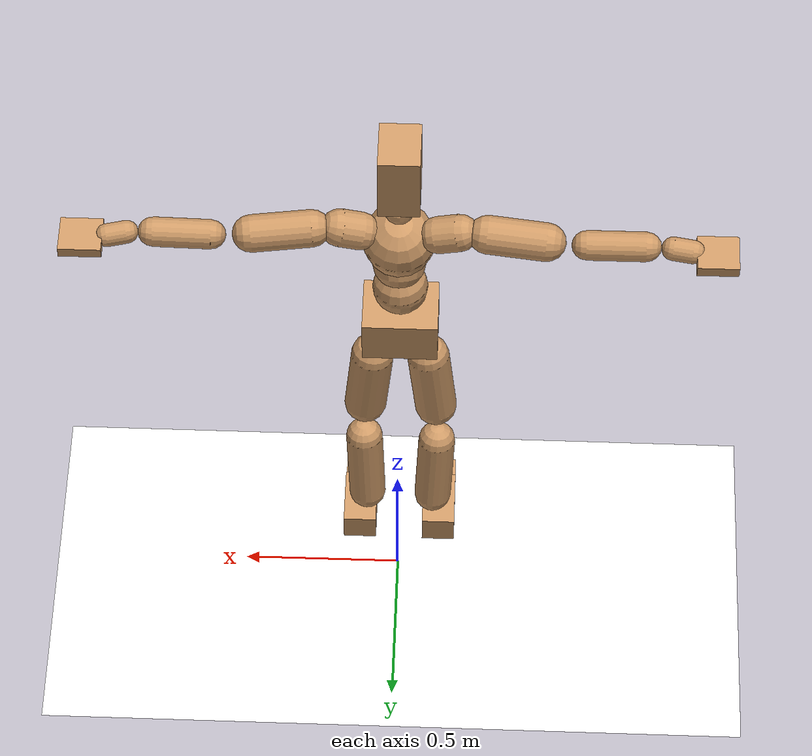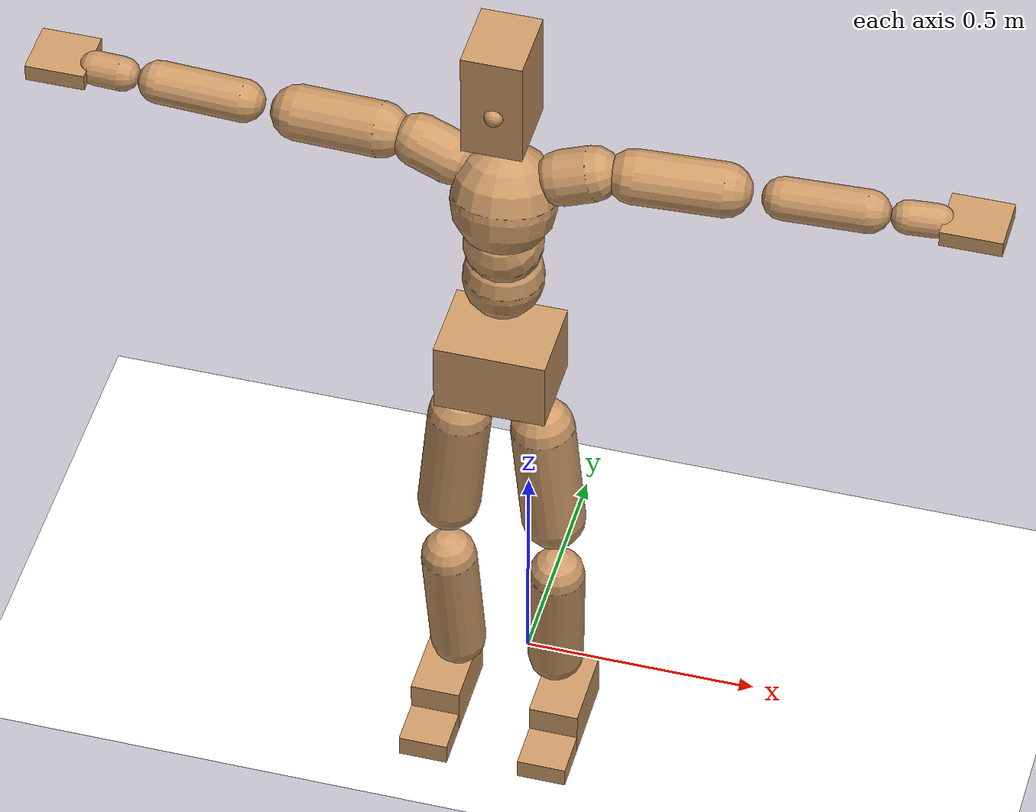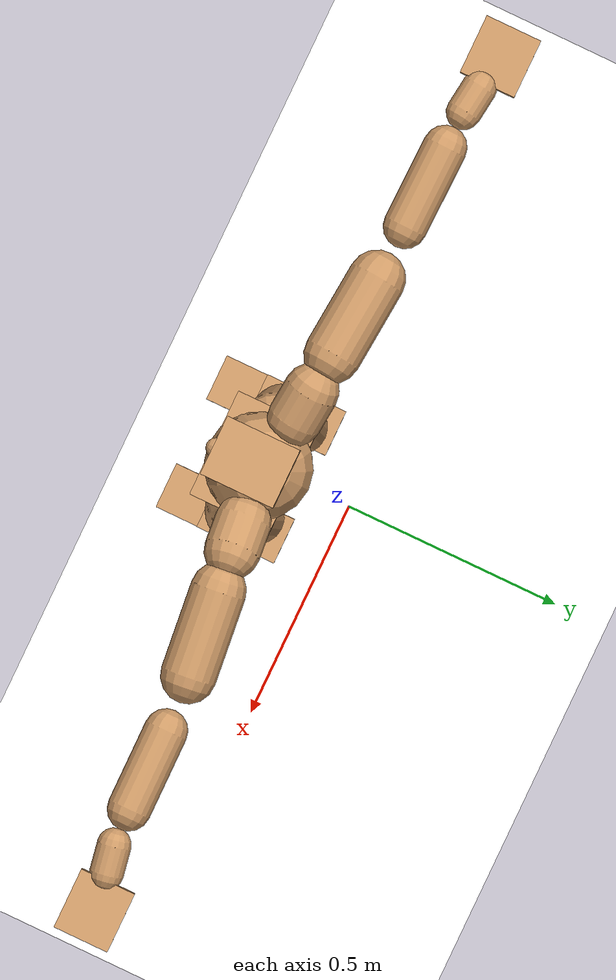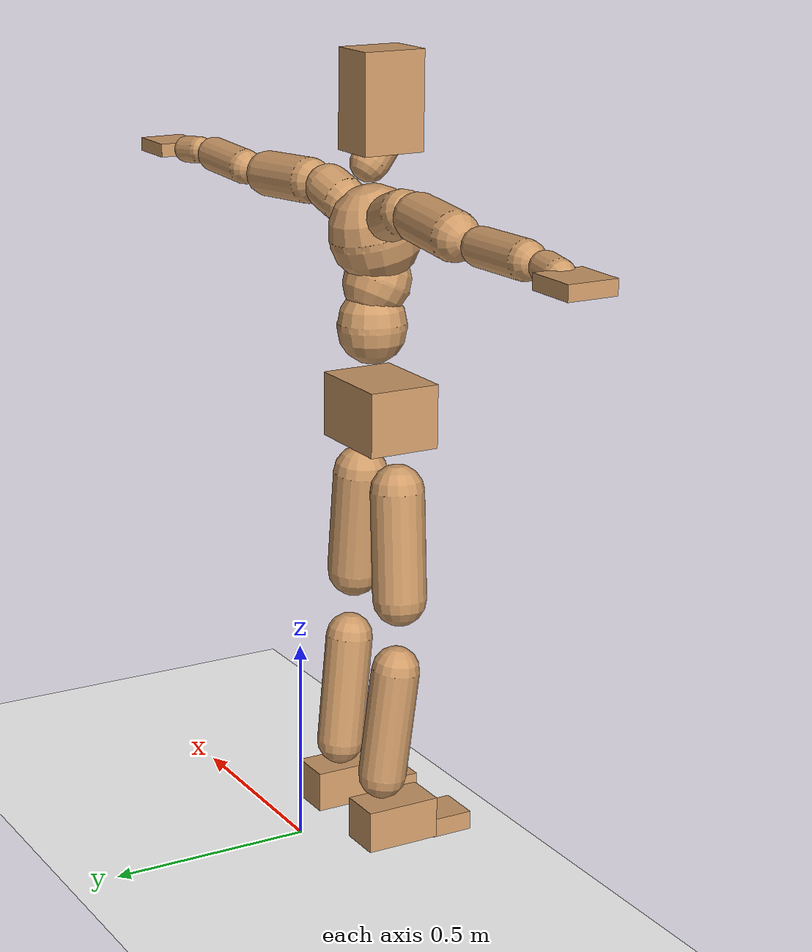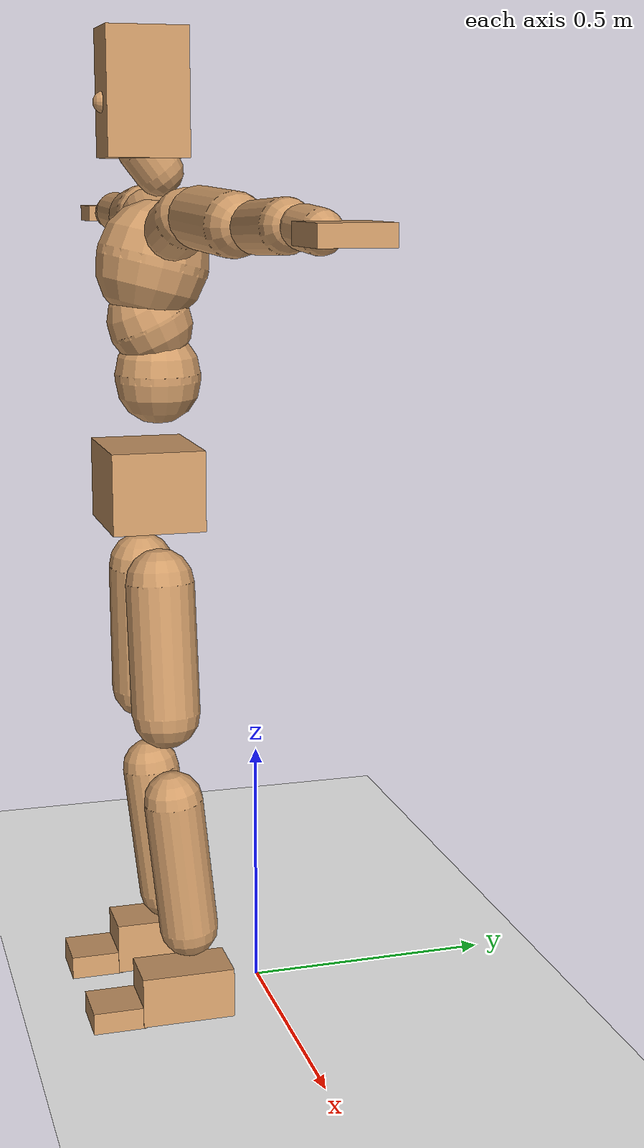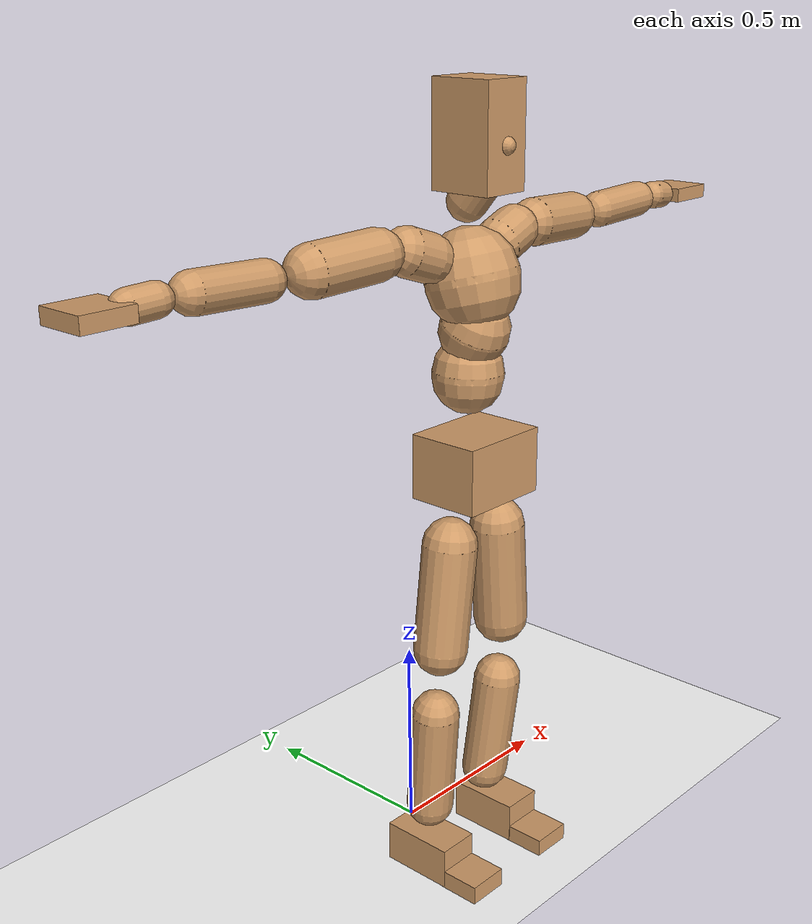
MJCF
<mujoco model="humanoid">
  <option integrator="implicitfast" />

  <visual>
    <global offwidth="1280" offheight="960" />
    <headlight active="1" ambient="0.34 0.34 0.34" diffuse="0.5 0.5 0.5" />
  </visual>

  <default>
    <joint damping="2" stiffness="2" armature="0.01" limited="true" solimplimit="0 .99 .01" />
    <geom condim="1" friction="0.7 0.005 0.0001" solimp=".99 .99 .003" solref="0.015 1" margin="0.001" rgba="0.8 0.6 .4 1" />
    <default class="smplcontact">
      <geom condim="3" friction="1. 0.005 0.0001" solref="0.015 1" solimp="0.98 0.98 0.001" priority="1" />
    </default>
    <default class="stiff_medium">
      <joint stiffness="10" />
    </default>
    <default class="stiff_medium_higher">
      <joint stiffness="50" />
    </default>
    <default class="stiff_high">
      <joint stiffness="100" />
    </default>
  </default>

  <asset>
    <texture type="skybox" builtin="gradient" rgb1="0.99 0.99 0.99" rgb2="0.608 0.828 0.892" width="100" />
    <texture builtin="flat" height="1278" mark="cross" markrgb="1 1 1" name="texgeom" random="0.01" rgb1="0.8 0.6 0.4" rgb2="0.8 0.6 0.4" type="cube" width="127" />
    <texture name="texplane" type="2d" builtin="checker" markrgb="1 1 1" rgb1="0.756 0.772 0.76" rgb2="0.6 0.6 0.6" width="100" height="100" />
    <material name="MatPlane" reflectance="0.5" texture="texplane" texrepeat="1 1" texuniform="true" />
    <material name="geom" texture="texgeom" texuniform="true" />
  </asset>

  <worldbody>
    <light name="tracking_light" pos="0 0 7" dir="0 0 -1" directional="true" cutoff="100" exponent="1" diffuse="1 1 1" specular="0.1 0.1 0.1" mode="trackcom" />
    <camera name="back" pos="0 3 2.4" xyaxes="-1 0 0 0 -1 2" mode="trackcom" />
    <camera name="side" pos="-3 0 2.4" xyaxes="0 -1 0 1 0 2" mode="trackcom" />
    <camera name="front_side" pos="-2.8 -2.8 0.8" xyaxes="0.5 -0.5 0 0.1 0.1 1" mode="trackcom" />
    <geom condim="3" name="floor" pos="0 0 0" rgba="1 1 1 1" size="100 100 .2" type="plane" material="MatPlane" />
    <body name="Pelvis" pos="-0.0018 -0.2233 1.08166" euler="90 0 0">
      <site name="Pelvis" size="0.01" />
      <freejoint name="Pelvis" />
      <geom type="box" pos="-0.0000 -0.0121 -0.0055" size="0.116927 0.0789724 0.0907854" quat="1.0000 0.0000 0.0000 0.0000" density="3165.830099" name="Pelvis" />
      <body name="L_Hip" pos="0.0803559 -0.105677 -0.00786216">
        <joint name="L_Hip_x" type="hinge" pos="0 0 0" axis="1 0 0" stiffness="15.7078747" range="-160.0 22.92" class="stiff_medium" damping="25.23772389480967" armature="0.01802189367662682"/>
        <joint name="L_Hip_y" type="hinge" pos="0 0 0" axis="0 1 0" stiffness="15.6855205" range="-70.0 70.0" class="stiff_medium" damping="16.300732094553652" armature="0.01694007328723401"/>
        <joint name="L_Hip_z" type="hinge" pos="0 0 0" axis="0 0 1" stiffness="15.690001799999997" range="-28.65 90.0" class="stiff_medium" damping="16.81631836797602" armature="0.018023488273476662"/>
        <geom type="capsule" density="2040.816327" fromto="0.00797778 -0.086715 -0.00104058 0.0316799 -0.347091 -0.00416232" size="0.0672687" name="L_Hip" />
        <body name="L_Knee" pos="0.0396577 -0.433806 -0.0052029">
          <joint name="L_Knee_x" type="hinge" pos="0 0 0" axis="1 0 0" range="-5.16 171.89" damping="13.346303052286608" armature="0.017826965084499265" stiffness="3.12244338"/>
          <joint name="L_Knee_y" type="hinge" pos="0 0 0" axis="0 1 0" range="-4.58 6.88" damping="12.963887814800705" armature="0.016757052996537826" stiffness="3.13417258"/>
          <joint name="L_Knee_z" type="hinge" pos="0 0 0" axis="0 0 1" range="-6.88 4.58" damping="13.333353450634641" armature="0.017834602645236845" stiffness="3.1150524799999997"/>
          <geom type="capsule" density="1234.567901" fromto="-0.00312174 -0.0920335 -0.0100589 -0.0126026 -0.368134 -0.040467" size="0.0591746" name="L_Knee" />
          <body name="L_Ankle" pos="-0.0157243 -0.460168 -0.0505259">
            <joint name="L_Ankle_x" type="hinge" pos="0 0 0" axis="1 0 0" range="-45.84 45.84" class="stiff_medium" damping="9.584383077339064" armature="0.016864742477228516" stiffness="15.1302503"/>
            <joint name="L_Ankle_y" type="hinge" pos="0 0 0" axis="0 1 0" range="-74.48 22.92" class="stiff_medium" damping="4.785799891077518" armature="0.016819783672982293" stiffness="15.1302518"/>
            <joint name="L_Ankle_z" type="hinge" pos="0 0 0" axis="0 0 1" range="-4.58 4.58" class="stiff_medium" damping="9.487489559185768" armature="0.016525469635267406" stiffness="15.130257199999999"/>
            <geom type="box" pos="0.0269395 -0.0276332 0.02798" size="0.0528305 0.0507523 0.092973" quat="1.0000 0.0000 0.0000 0.0000" density="449.071558" name="L_Ankle" class="smplcontact" />
            <body name="L_Toe" pos="0.0305237 -0.064516 0.137935">
              <joint name="L_Toe_x" type="hinge" pos="0 0 0" axis="1 0 0" range="-91.67 22.92" armature="0.016354829921636442" damping="3.1461274088534013" stiffness="3.02605338"/>
              <joint name="L_Toe_y" type="hinge" pos="0 0 0" axis="0 1 0" range="-4.58 4.58" armature="0.016148466932082776" damping="3.126215635679384" stiffness="3.0260532600000003"/>
              <joint name="L_Toe_z" type="hinge" pos="0 0 0" axis="0 0 1" range="-4.58 4.58" armature="0.01573122144709122" damping="3.0855639868541425" stiffness="3.0260539999999994"/>
              <geom type="box" pos="-0.0034686 0.0063591 0.0286738" size="0.0522836 0.021876 0.0542525" quat="1.0000 0.0000 0.0000 0.0000" density="423.206892" name="L_Toe" class="smplcontact" />
            </body>
          </body>
        </body>
      </body>
      <body name="R_Hip" pos="-0.0782747 -0.104636 -0.00497166">
        <joint name="R_Hip_x" type="hinge" pos="0 0 0" axis="1 0 0" stiffness="15.7078747" range="-160.0 22.92" class="stiff_medium" damping="25.23772389480967" armature="0.01802189367662682"/>
        <joint name="R_Hip_y" type="hinge" pos="0 0 0" axis="0 1 0" stiffness="15.6855205" range="-70.0 70.0" class="stiff_medium" damping="16.300732094553652" armature="0.01694007328723401"/>
        <joint name="R_Hip_z" type="hinge" pos="0 0 0" axis="0 0 1" stiffness="15.690001799999997" range="-90.0 28.65" class="stiff_medium" damping="16.81631836797602" armature="0.018023488273476662"/>
        <geom type="capsule" density="2040.816327" fromto="-0.00890274 -0.0884493 -0.00208116 -0.0353797 -0.353913 -0.00820902" size="0.0662843" name="R_Hip" />
        <body name="R_Knee" pos="-0.0442825 -0.442362 -0.0102902">
          <joint name="R_Knee_x" type="hinge" pos="0 0 0" axis="1 0 0" range="-5.16 171.89" damping="13.346303052286608" armature="0.017826965084499265" stiffness="3.12244338"/>
          <joint name="R_Knee_y" type="hinge" pos="0 0 0" axis="0 1 0" range="-6.88 4.58" damping="12.963887814800705" armature="0.016757052996537826" stiffness="3.13417258"/>
          <joint name="R_Knee_z" type="hinge" pos="0 0 0" axis="0 0 1" range="-4.58 6.88" damping="13.333353450634641" armature="0.017834602645236845" stiffness="3.1150524799999997"/>
          <geom type="capsule" density="1234.567901" fromto="0.00369984 -0.0921491 -0.0098277 0.0145681 -0.368481 -0.0390796" size="0.0591746" name="R_Knee" />
          <body name="R_Ankle" pos="0.018268 -0.46063 -0.0489073">
            <joint name="R_Ankle_x" type="hinge" pos="0 0 0" axis="1 0 0" range="-45.84 45.84" class="stiff_medium" damping="9.584383077339064" armature="0.016864742477228516" stiffness="15.1302503"/>
            <joint name="R_Ankle_y" type="hinge" pos="0 0 0" axis="0 1 0" range="-22.92 74.48" class="stiff_medium" damping="4.785799891077518" armature="0.016819783672982293" stiffness="15.1302518"/>
            <joint name="R_Ankle_z" type="hinge" pos="0 0 0" axis="0 0 1" range="-4.58 4.58" class="stiff_medium" damping="9.487489559185768" armature="0.016525469635267406" stiffness="15.130257199999999"/>
            <geom type="box" pos="-0.0245114 -0.0201179 0.0295987" size="0.0528305 0.0522836 0.0946137" quat="1.0000 0.0000 0.0000 0.0000" density="434.700981" name="R_Ankle" class="smplcontact" />
            <body name="R_Toe" pos="-0.0293675 -0.0556132 0.142559">
              <joint name="R_Toe_x" type="hinge" pos="0 0 0" axis="1 0 0" range="-91.67 22.92" armature="0.016354829921636442" damping="3.1461274088534013" stiffness="3.02605338"/>
              <joint name="R_Toe_y" type="hinge" pos="0 0 0" axis="0 1 0" range="-4.58 4.58" armature="0.016148466932082776" damping="3.126215635679384" stiffness="3.0260532600000003"/>
              <joint name="R_Toe_z" type="hinge" pos="0 0 0" axis="0 0 1" range="-4.58 4.58" armature="0.01573122144709122" damping="3.0855639868541425" stiffness="3.0260539999999994"/>
              <geom type="box" pos="0.00485604 0.0052029 0.0262457" size="0.052393 0.0236261 0.0539243" quat="1.0000 0.0000 0.0000 0.0000" density="407.384095" name="R_Toe" class="smplcontact" />
            </body>
          </body>
        </body>
      </body>
      <body name="Torso" pos="-0.0028125 0.122625 -0.0300375">
        <joint name="Torso_x" type="hinge" pos="0 0 0" axis="1 0 0" range="-25.78 57.3" class="stiff_medium" damping="22.292495138595267" armature="0.015506230375247636" stiffness="14.24389"/>
        <joint name="Torso_y" type="hinge" pos="0 0 0" axis="0 1 0" range="-57.3 57.3" class="stiff_high" damping="31.739361377039707" armature="0.01791601005719481" stiffness="140.570788"/>
        <joint name="Torso_z" type="hinge" pos="0 0 0" axis="0 0 1" range="-34.38 34.38" class="stiff_high" damping="30.50097700648449" armature="0.01633761830676413" stiffness="142.3569795918367"/>
        <geom type="capsule" density="2040.816327" fromto="0.0028125 0.0684 0.0005625 0.003375 0.0835875 0.000675" size="0.0841132" name="Torso" />
        <body name="Spine" pos="0.0061875 0.1521 0.0012375">
          <joint name="Spine_x" type="hinge" pos="0 0 0" axis="1 0 0" stiffness="14.078564800000002" range="-25.78 57.3" class="stiff_medium" damping="21.72760971920413" armature="0.014903319125889361"/>
          <joint name="Spine_y" type="hinge" pos="0 0 0" axis="0 1 0" stiffness="14.049216999999999" range="-57.3 57.3" class="stiff_high" damping="12.69771635555847" armature="0.01793160437408819"/>
          <joint name="Spine_z" type="hinge" pos="0 0 0" axis="0 0 1" stiffness="27.982225600000007" range="-34.38 34.38" class="stiff_high" damping="18.276401369401317" armature="0.016579316564810813"/>
          <geom type="capsule" density="2040.816327" fromto="0.0007875 0.026775 0.012825 0.0009 0.0327375 0.01575" size="0.0825819" name="Spine" />
          <body name="Chest" pos="0.0016875 0.0595125 0.028575">
            <joint name="Chest_x" type="hinge" pos="0 0 0" axis="1 0 0" stiffness="13.841513469387756" range="-25.78 57.3" class="stiff_medium" damping="21.31442512388642" armature="0.014587509422819903"/>
            <joint name="Chest_y" type="hinge" pos="0 0 0" axis="0 1 0" stiffness="14.707685319148933" range="-57.3 57.3" class="stiff_high" damping="12.998476051320766" armature="0.017949839657635757"/>
            <joint name="Chest_z" type="hinge" pos="0 0 0" axis="0 0 1" stiffness="27.632332" range="-34.38 34.38" class="stiff_high" damping="18.249983369279786" armature="0.016740750019608105"/>
            <geom type="capsule" density="2040.816327" fromto="-0.0010125 0.076725 -0.0194625 -0.001125 0.0937125 -0.02385" size="0.109599" name="Chest" />
            <body name="Neck" pos="-0.00315 0.240638 -0.0482625">
              <joint name="Neck_x" type="hinge" pos="0 0 0" axis="1 0 0" range="-28.65 57.3" class="stiff_medium_higher" damping="11.652865887297615" armature="0.011733086047008907" stiffness="57.865971"/>
              <joint name="Neck_y" type="hinge" pos="0 0 0" axis="0 1 0" range="-40.11 40.11" class="stiff_medium_higher" damping="11.712065283056939" armature="0.011905293341033716" stiffness="57.609867"/>
              <joint name="Neck_z" type="hinge" pos="0 0 0" axis="0 0 1" range="-40.11 40.11" class="stiff_medium_higher" damping="11.574391386476137" armature="0.011716035824774802" stiffness="57.17229700000001"/>
              <geom type="capsule" density="1000" fromto="0.001125 0.014625 0.0115875 0.0046125 0.0585 0.0462375" size="0.0476897" name="Neck" />
              <body name="Head" pos="0.00536224 0.067028 0.0529006">
                <joint name="Head_x" type="hinge" pos="0 0 0" axis="1 0 0" range="-28.65 57.3" class="stiff_medium_higher" damping="2.2965213543809053" armature="0.011660345413880405" stiffness="56.537887"/>
                <joint name="Head_y" type="hinge" pos="0 0 0" axis="0 1 0" range="-40.11 40.11" class="stiff_medium_higher" damping="2.296523793232211" armature="0.01166037368599503" stiffness="56.53787"/>
                <joint name="Head_z" type="hinge" pos="0 0 0" axis="0 0 1" range="-40.11 40.11" class="stiff_medium_higher" damping="2.296521372569542" armature="0.011660343123708694" stiffness="56.53789899999999"/>
                <geom type="box" pos="-0.00433104 0.0903331 -0.0119619" size="0.0624907 0.119 0.0783712" quat="1.0000 0.0000 0.0000 0.0000" density="1018.069894" name="Head" />
                <geom type="capsule" name="nose" size="0.020624 0.010312" pos="0 0.072184 0.05156" quat="1 0 0 0" mass="0" contype="0" conaffinity="0" />
              </body>
            </body>
            <body name="L_Thorax" pos="0.0911086 0.14071 -0.0394264">
              <joint name="L_Thorax_x" type="hinge" pos="0 0 0" axis="1 0 0" range="-10.89 4.58" class="stiff_medium_higher" damping="32.85045987595898" armature="0.017230502966720487" stiffness="78.287958"/>
              <joint name="L_Thorax_y" type="hinge" pos="0 0 0" axis="0 1 0" range="-28.65 17.19" class="stiff_medium_higher" damping="33.632749955327995" armature="0.018036809597791793" stiffness="78.39259650000001"/>
              <joint name="L_Thorax_z" type="hinge" pos="0 0 0" axis="0 0 1" range="-31.51 40.11" class="stiff_medium_higher" damping="33.63300575833298" armature="0.018037539319358906" stiffness="78.39061749999998"/>
              <geom type="capsule" density="1000" fromto="0.0210428 0.00705282 -0.00208116 0.0841714 0.0282113 -0.00820902" size="0.056987" name="L_Thorax" />
              <body name="L_Shoulder" pos="0.105214 0.0352641 -0.0102902">
                <joint name="L_Shoulder_x" type="hinge" pos="0 0 0" axis="1 0 0" range="-97.4 97.4" class="stiff_medium" damping="9.759575156828415" armature="0.01690941924570479" stiffness="15.646983800000001"/>
                <joint name="L_Shoulder_y" type="hinge" pos="0 0 0" axis="0 1 0" range="-108.86 80.21" class="stiff_medium" damping="10.078063129916092" armature="0.018006180815773827" stiffness="15.6685945"/>
                <joint name="L_Shoulder_z" type="hinge" pos="0 0 0" axis="0 0 1" range="-97.4 85.94" class="stiff_medium" damping="10.078529537158841" armature="0.018007107370736332" stiffness="15.669238500000002"/>
                <geom type="capsule" density="1000" fromto="0.0600068 -0.00300612 -0.0063591 0.240143 -0.0117932 -0.0254364" size="0.0565495" name="L_Shoulder" />
                <body name="L_Elbow" pos="0.30015 -0.0147994 -0.0317955">
                  <joint name="L_Elbow_x" type="hinge" pos="0 0 0" axis="1 0 0" range="-17.19 4.58" damping="7.993562672593395" armature="0.016405794979871408" stiffness="3.1158280000000005"/>
                  <joint name="L_Elbow_y" type="hinge" pos="0 0 0" axis="0 1 0" range="-180.0 17.19" damping="8.339728487835709" armature="0.017857297205882083" stiffness="3.1158610600000003"/>
                  <joint name="L_Elbow_z" type="hinge" pos="0 0 0" axis="0 0 1" range="-100.84 4.58" damping="8.340233666322861" armature="0.017862155716191503" stiffness="3.11539094"/>
                  <geom type="capsule" density="1000" fromto="0.0575788 0.00208116 -0.00023124 0.230546 0.00832464 -0.00104058" size="0.0442989" name="L_Elbow" />
                  <body name="L_Wrist" pos="0.288125 0.0104058 -0.00138744">
                    <joint name="L_Wrist_x" type="hinge" pos="0 0 0" axis="1 0 0" range="-180.0 22.92" armature="0.016277753210261595" damping="3.1548587668397294" stiffness="3.05728122"/>
                    <joint name="L_Wrist_y" type="hinge" pos="0 0 0" axis="0 1 0" range="-17.19 17.19" armature="0.01736893748321894" damping="3.2612931863715438" stiffness="3.0617973199999997"/>
                    <joint name="L_Wrist_z" type="hinge" pos="0 0 0" axis="0 0 1" range="-22.92 22.92" armature="0.017429339452516682" damping="3.266182531651119" stiffness="3.0603421200000005"/>
                    <geom type="capsule" density="1000" fromto="0.0194242 -0.00184992 -0.0034686 0.0776966 -0.0075153 -0.0138744" size="0.0347828" name="L_Wrist" class="smplcontact" />
                    <body name="L_Hand" pos="0.0971208 -0.00948084 -0.0172274">
                      <joint name="L_Hand_x" type="hinge" pos="0 0 0" axis="1 0 0" range="-17.19 17.19" armature="0.015736319564779964" damping="3.086060774314912" stiffness="3.0260478200000005"/>
                      <joint name="L_Hand_y" type="hinge" pos="0 0 0" axis="0 1 0" range="-51.57 51.57" armature="0.016624305023261014" damping="3.1719377243112086" stiffness="3.0260479800000004"/>
                      <joint name="L_Hand_z" type="hinge" pos="0 0 0" axis="0 0 1" range="-91.67 91.67" armature="0.01686100696632464" damping="3.194439431525749" stiffness="3.0260480000000003"/>
                      <geom type="box" pos="0.0570007 0.0011562 -0.00670596" size="0.0639873 0.017282 0.0588464" quat="1.0000 0.0000 0.0000 0.0000" density="400.552564" name="L_Hand" class="smplcontact" />
                    </body>
                  </body>
                </body>
              </body>
            </body>
            <body name="R_Thorax" pos="-0.0945772 0.137357 -0.0446293">
              <joint name="R_Thorax_x" type="hinge" pos="0 0 0" axis="1 0 0" range="-10.89 4.58" class="stiff_medium_higher" damping="32.85045987595898" armature="0.017230502966720487" stiffness="78.287958"/>
              <joint name="R_Thorax_y" type="hinge" pos="0 0 0" axis="0 1 0" range="-17.19 28.65" class="stiff_medium_higher" damping="33.632749955327995" armature="0.018036809597791793" stiffness="78.39259650000001"/>
              <joint name="R_Thorax_z" type="hinge" pos="0 0 0" axis="0 0 1" range="-40.11 31.51" class="stiff_medium_higher" damping="33.63300575833298" armature="0.018037539319358906" stiffness="78.39061749999998"/>
              <geom type="capsule" density="1000" fromto="-0.022199 0.0075153 -0.00208116 -0.0887962 0.0300612 -0.00844026" size="0.0558932" name="R_Thorax" />
              <body name="R_Shoulder" pos="-0.110995 0.0376921 -0.0105214">
                <joint name="R_Shoulder_x" type="hinge" pos="0 0 0" axis="1 0 0" range="-97.4 97.4" class="stiff_medium" damping="9.759575156828415" armature="0.01690941924570479" stiffness="15.646983800000001"/>
                <joint name="R_Shoulder_y" type="hinge" pos="0 0 0" axis="0 1 0" range="-80.21 108.86" class="stiff_medium" damping="10.078063129916092" armature="0.018006180815773827" stiffness="15.6685945"/>
                <joint name="R_Shoulder_z" type="hinge" pos="0 0 0" axis="0 0 1" range="-85.94 97.4" class="stiff_medium" damping="10.078529537158841" armature="0.018007107370736332" stiffness="15.669238500000002"/>
                <geom type="capsule" density="1000" fromto="-0.0586193 -0.00312174 -0.00497166 -0.234709 -0.0123713 -0.019771" size="0.0580808" name="R_Shoulder" />
                <body name="R_Elbow" pos="-0.293328 -0.0153775 -0.0247427">
                  <joint name="R_Elbow_x" type="hinge" pos="0 0 0" axis="1 0 0" range="-17.19 4.58" damping="7.993562672593395" armature="0.016405794979871408" stiffness="3.1158280000000005"/>
                  <joint name="R_Elbow_y" type="hinge" pos="0 0 0" axis="0 1 0" range="-17.19 180.0" damping="8.339728487835709" armature="0.017857297205882083" stiffness="3.1158610600000003"/>
                  <joint name="R_Elbow_z" type="hinge" pos="0 0 0" axis="0 0 1" range="-4.58 100.84" damping="8.340233666322861" armature="0.017862155716191503" stiffness="3.11539094"/>
                  <geom type="capsule" density="1000" fromto="-0.0590818 0.00184992 -0.00127182 -0.236096 0.00716844 -0.00508728" size="0.044627" name="R_Elbow" />
                  <body name="R_Wrist" pos="-0.295178 0.00901836 -0.00647472">
                    <joint name="R_Wrist_x" type="hinge" pos="0 0 0" axis="1 0 0" range="-180.0 22.92" armature="0.016277753210261595" damping="3.1548587668397294" stiffness="3.05728122"/>
                    <joint name="R_Wrist_y" type="hinge" pos="0 0 0" axis="0 1 0" range="-17.19 17.19" armature="0.01736893748321894" damping="3.2612931863715438" stiffness="3.0617973199999997"/>
                    <joint name="R_Wrist_z" type="hinge" pos="0 0 0" axis="0 0 1" range="-22.92 22.92" armature="0.017429339452516682" damping="3.266182531651119" stiffness="3.0603421200000005"/>
                    <geom type="capsule" density="1000" fromto="-0.0195398 -0.00138744 -0.00242802 -0.0782747 -0.00566538 -0.00959646" size="0.0356579" name="R_Wrist" class="smplcontact" />
                    <body name="R_Hand" pos="-0.0978145 -0.00705282 -0.0119089">
                      <joint name="R_Hand_x" type="hinge" pos="0 0 0" axis="1 0 0" range="-17.19 17.19" armature="0.015736319564779964" damping="3.086060774314912" stiffness="3.0260478200000005"/>
                      <joint name="R_Hand_y" type="hinge" pos="0 0 0" axis="0 1 0" range="-51.57 51.57" armature="0.016624305023261014" damping="3.1719377243112086" stiffness="3.0260479800000004"/>
                      <joint name="R_Hand_z" type="hinge" pos="0 0 0" axis="0 0 1" range="-91.67 91.67" armature="0.01686100696632464" damping="3.194439431525749" stiffness="3.0260480000000003"/>
                      <geom type="box" pos="-0.0534164 -0.00104058 -0.00913398" size="0.0622372 0.0179383 0.0597215" quat="1.0000 0.0000 0.0000 0.0000" density="403.679611" name="R_Hand" class="smplcontact" />
                    </body>
                  </body>
                </body>
              </body>
            </body>
          </body>
        </body>
      </body>
    </body>
  </worldbody>
  <actuator>
    <general name="L_Hip_x" joint="L_Hip_x" biastype="affine" gainprm="451.33446443837096" biasprm="-338.22943573809255 -282.7417446 -3.3650298526412894" ctrllimited="true" ctrlrange="-1 1" forcerange="-565.4834892 565.4834892" />
    <general name="L_Hip_y" joint="L_Hip_y" biastype="affine" gainprm="344.9426117937247" biasprm="0.0 -282.33936900000003 -3.2601464189107303" ctrllimited="true" ctrlrange="-1 1" forcerange="-564.6787380000001 564.6787380000001" />
    <general name="L_Hip_z" joint="L_Hip_z" biastype="affine" gainprm="292.42238371683965" biasprm="151.20196579037597 -282.42003239999997 -3.363263673595204" ctrllimited="true" ctrlrange="-1 1" forcerange="-564.8400647999999 564.8400647999999" />
    <general name="L_Knee_x" joint="L_Knee_x" biastype="affine" gainprm="434.1905674505184" biasprm="408.8821988761645 -281.0199042 -3.336575763071652" ctrllimited="true" ctrlrange="-1 1" forcerange="-562.0398084 562.0398084" />
    <general name="L_Knee_y" joint="L_Knee_y" biastype="affine" gainprm="28.209631027656275" biasprm="5.661618792636077 -282.0755322 -3.240971953700176" ctrllimited="true" ctrlrange="-1 1" forcerange="-564.1510644 564.1510644" />
    <general name="L_Knee_z" joint="L_Knee_z" biastype="affine" gainprm="28.037537451937514" biasprm="-5.627079942360933 -280.35472319999997 -3.3333383626586603" ctrllimited="true" ctrlrange="-1 1" forcerange="-560.7094463999999 560.7094463999999" />
    <general name="L_Ankle_x" joint="L_Ankle_x" biastype="affine" gainprm="108.94582667023035" biasprm="0.0 -136.1722527 -3.1947943591130215" ctrllimited="true" ctrlrange="-1 1" forcerange="-272.3445054 272.3445054" />
    <general name="L_Ankle_y" joint="L_Ankle_y" biastype="affine" gainprm="115.74306904098954" biasprm="-61.2701503054766 -136.1722662 -3.1905332607183454" ctrllimited="true" ctrlrange="-1 1" forcerange="-272.3445324 272.3445324" />
    <general name="L_Ankle_z" joint="L_Ankle_z" biastype="affine" gainprm="10.885081014415691" biasprm="0.0 -136.17231479999998 -3.1624965197285895" ctrllimited="true" ctrlrange="-1 1" forcerange="-272.34462959999996 272.34462959999996" />
    <general name="L_Toe_x" joint="L_Toe_x" biastype="affine" gainprm="108.93643957196635" biasprm="-65.35806109235261 -108.93792168 -1.2584509635413605" ctrllimited="true" ctrlrange="-1 1" forcerange="-217.87584336 217.87584336" />
    <general name="L_Toe_y" joint="L_Toe_y" biastype="affine" gainprm="8.7080700489445" biasprm="0.0 -108.93791736000001 -1.2504862542717536" ctrllimited="true" ctrlrange="-1 1" forcerange="-217.87583472000003 217.87583472000003" />
    <general name="L_Toe_z" joint="L_Toe_z" biastype="affine" gainprm="8.708072178441661" biasprm="0.0 -108.93794399999997 -1.2342255947416572" ctrllimited="true" ctrlrange="-1 1" forcerange="-217.87588799999995 217.87588799999995" />
    <general name="R_Hip_x" joint="R_Hip_x" biastype="affine" gainprm="451.33446443837096" biasprm="-338.22943573809255 -282.7417446 -3.3650298526412894" ctrllimited="true" ctrlrange="-1 1" forcerange="-565.4834892 565.4834892" />
    <general name="R_Hip_y" joint="R_Hip_y" biastype="affine" gainprm="344.9426117937247" biasprm="0.0 -282.33936900000003 -3.2601464189107303" ctrllimited="true" ctrlrange="-1 1" forcerange="-564.6787380000001 564.6787380000001" />
    <general name="R_Hip_z" joint="R_Hip_z" biastype="affine" gainprm="292.42238371683965" biasprm="-151.20196579037597 -282.42003239999997 -3.363263673595204" ctrllimited="true" ctrlrange="-1 1" forcerange="-564.8400647999999 564.8400647999999" />
    <general name="R_Knee_x" joint="R_Knee_x" biastype="affine" gainprm="434.1905674505184" biasprm="408.8821988761645 -281.0199042 -3.336575763071652" ctrllimited="true" ctrlrange="-1 1" forcerange="-562.0398084 562.0398084" />
    <general name="R_Knee_y" joint="R_Knee_y" biastype="affine" gainprm="28.209631027656275" biasprm="-5.661618792636077 -282.0755322 -3.240971953700176" ctrllimited="true" ctrlrange="-1 1" forcerange="-564.1510644 564.1510644" />
    <general name="R_Knee_z" joint="R_Knee_z" biastype="affine" gainprm="28.037537451937514" biasprm="5.627079942360933 -280.35472319999997 -3.3333383626586603" ctrllimited="true" ctrlrange="-1 1" forcerange="-560.7094463999999 560.7094463999999" />
    <general name="R_Ankle_x" joint="R_Ankle_x" biastype="affine" gainprm="108.94582667023035" biasprm="0.0 -136.1722527 -3.1947943591130215" ctrllimited="true" ctrlrange="-1 1" forcerange="-272.3445054 272.3445054" />
    <general name="R_Ankle_y" joint="R_Ankle_y" biastype="affine" gainprm="115.74306904098954" biasprm="61.2701503054766 -136.1722662 -3.1905332607183454" ctrllimited="true" ctrlrange="-1 1" forcerange="-272.3445324 272.3445324" />
    <general name="R_Ankle_z" joint="R_Ankle_z" biastype="affine" gainprm="10.885081014415691" biasprm="0.0 -136.17231479999998 -3.1624965197285895" ctrllimited="true" ctrlrange="-1 1" forcerange="-272.34462959999996 272.34462959999996" />
    <general name="R_Toe_x" joint="R_Toe_x" biastype="affine" gainprm="108.93643957196635" biasprm="-65.35806109235261 -108.93792168 -1.2584509635413605" ctrllimited="true" ctrlrange="-1 1" forcerange="-217.87584336 217.87584336" />
    <general name="R_Toe_y" joint="R_Toe_y" biastype="affine" gainprm="8.7080700489445" biasprm="0.0 -108.93791736000001 -1.2504862542717536" ctrllimited="true" ctrlrange="-1 1" forcerange="-217.87583472000003 217.87583472000003" />
    <general name="R_Toe_z" joint="R_Toe_z" biastype="affine" gainprm="8.708072178441661" biasprm="0.0 -108.93794399999997 -1.2342255947416572" ctrllimited="true" ctrlrange="-1 1" forcerange="-217.87588799999995 217.87588799999995" />
    <general name="Torso_x" joint="Torso_x" biastype="affine" gainprm="247.84702634436778" biasprm="94.0315150502464 -341.85336 -5.944665370292071" ctrllimited="true" ctrlrange="-1 1" forcerange="-512.7800400000001 512.7800400000001" />
    <general name="Torso_y" joint="Torso_y" biastype="affine" gainprm="337.39474233605796" biasprm="0.0 -337.3698912 -6.3478722754079415" ctrllimited="true" ctrlrange="-1 1" forcerange="-506.05483680000003 506.05483680000003" />
    <general name="Torso_z" joint="Torso_z" biastype="affine" gainprm="205.00915075951863" biasprm="0.0 -341.6567510204081 -6.100195401296898" ctrllimited="true" ctrlrange="-1 1" forcerange="-512.4851265306121 512.4851265306121" />
    <general name="Spine_x" joint="Spine_x" biastype="affine" gainprm="244.97032909384228" biasprm="92.94011522674418 -337.88555520000006 -5.794029258454434" ctrllimited="true" ctrlrange="-1 1" forcerange="-506.82833280000006 506.82833280000006" />
    <general name="Spine_y" joint="Spine_y" biastype="affine" gainprm="337.20604523739064" biasprm="0.0 -337.18120799999997 -6.348858177779235" ctrllimited="true" ctrlrange="-1 1" forcerange="-505.77181199999995 505.77181199999995" />
    <general name="Spine_z" joint="Spine_z" biastype="affine" gainprm="201.48686502991183" biasprm="0.0 -335.7867072000001 -6.092133789800439" ctrllimited="true" ctrlrange="-1 1" forcerange="-503.6800608000001 503.6800608000001" />
    <general name="Chest_x" joint="Chest_x" biastype="affine" gainprm="240.84558035011983" biasprm="91.37521295902474 -332.19632326530615 -5.683846699703045" ctrllimited="true" ctrlrange="-1 1" forcerange="-498.29448489795925 498.29448489795925" />
    <general name="Chest_y" joint="Chest_y" biastype="affine" gainprm="353.0104489856084" biasprm="0.0 -352.9844476595744 -6.499238025660383" ctrllimited="true" ctrlrange="-1 1" forcerange="-529.4766714893616 529.4766714893616" />
    <general name="Chest_z" joint="Chest_z" biastype="affine" gainprm="198.96744553963256" biasprm="0.0 -331.587984 -6.083327789759928" ctrllimited="true" ctrlrange="-1 1" forcerange="-497.381976 497.381976" />
    <general name="Neck_x" joint="Neck_x" biastype="affine" gainprm="31.24992608352904" biasprm="10.416642027843013 -41.663499120000004 -0.9322292709838091" ctrllimited="true" ctrlrange="-1 1" forcerange="-83.32699824000001 83.32699824000001" />
    <general name="Neck_y" joint="Neck_y" biastype="affine" gainprm="29.037511754011863" biasprm="0.0 -41.479104240000005 -0.9369652226445551" ctrllimited="true" ctrlrange="-1 1" forcerange="-82.95820848000001 82.95820848000001" />
    <general name="Neck_z" joint="Neck_z" biastype="affine" gainprm="28.81696022907599" biasprm="0.0 -41.16405384 -0.925951310918091" ctrllimited="true" ctrlrange="-1 1" forcerange="-82.32810768 82.32810768" />
    <general name="Head_x" joint="Head_x" biastype="affine" gainprm="20.355138597419856" biasprm="6.785046199139953 -27.13818576 -0.9186085417523622" ctrllimited="true" ctrlrange="-1 1" forcerange="-54.27637152 54.27637152" />
    <general name="Head_y" joint="Head_y" biastype="affine" gainprm="18.998123645171113" biasprm="0.0 -27.1381776 -0.9186095172928845" ctrllimited="true" ctrlrange="-1 1" forcerange="-54.2763552 54.2763552" />
    <general name="Head_z" joint="Head_z" biastype="affine" gainprm="18.998133389888867" biasprm="0.0 -27.138191519999996 -0.9186085490278169" ctrllimited="true" ctrlrange="-1 1" forcerange="-54.27638303999999 54.27638303999999" />
    <general name="L_Thorax_x" joint="L_Thorax_x" biastype="affine" gainprm="25.365527176048975" biasprm="-10.346249287709703 -187.8910992 -2.6280367900767185" ctrllimited="true" ctrlrange="-1 1" forcerange="-375.7821984 375.7821984" />
    <general name="L_Thorax_y" joint="L_Thorax_y" biastype="affine" gainprm="75.26243616752596" biasprm="-18.81560904188149 -188.14223160000003 -2.69061999642624" ctrllimited="true" ctrlrange="-1 1" forcerange="-376.28446320000006 376.28446320000006" />
    <general name="L_Thorax_z" joint="L_Thorax_z" biastype="affine" gainprm="117.58637874682717" biasprm="14.11955958143973 -188.13748199999995 -2.6906404606666383" ctrllimited="true" ctrlrange="-1 1" forcerange="-376.2749639999999 376.2749639999999" />
    <general name="L_Shoulder_x" joint="L_Shoulder_x" biastype="affine" gainprm="127.67568446303635" biasprm="0.0 -75.10552224 -2.602553375154244" ctrllimited="true" ctrlrange="-1 1" forcerange="-150.21104448 150.21104448" />
    <general name="L_Shoulder_y" joint="L_Shoulder_y" biastype="affine" gainprm="124.0912829792742" biasprm="-18.80369840459198 -75.2092536 -2.687483501310958" ctrllimited="true" ctrlrange="-1 1" forcerange="-150.4185072 150.4185072" />
    <general name="L_Shoulder_z" joint="L_Shoulder_z" biastype="affine" gainprm="120.335489043163" biasprm="-7.52178850460702 -75.21234480000001 -2.6876078765756914" ctrllimited="true" ctrlrange="-1 1" forcerange="-150.42468960000002 150.42468960000002" />
    <general name="L_Elbow_x" joint="L_Elbow_x" biastype="affine" gainprm="21.3099179460717" biasprm="-12.343503229212871 -112.16980800000002 -1.2789700276149434" ctrllimited="true" ctrlrange="-1 1" forcerange="-224.33961600000004 224.33961600000004" />
    <general name="L_Elbow_y" joint="L_Elbow_y" biastype="affine" gainprm="193.02468100743772" biasprm="-159.37090275785252 -112.17099816000001 -1.3343565580537136" ctrllimited="true" ctrlrange="-1 1" forcerange="-224.34199632000002 224.34199632000002" />
    <general name="L_Elbow_z" joint="L_Elbow_z" biastype="affine" gainprm="103.17760369691099" biasprm="-94.2124467071206 -112.15407384000001 -1.334437386611658" ctrllimited="true" ctrlrange="-1 1" forcerange="-224.30814768000002 224.30814768000002" />
    <general name="L_Wrist_x" joint="L_Wrist_x" biastype="affine" gainprm="32.483204370441356" biasprm="-25.145188953818884 -18.34368732 -1.261943506735892" ctrllimited="true" ctrlrange="-1 1" forcerange="-36.68737464 36.68737464" />
    <general name="L_Wrist_y" joint="L_Wrist_y" biastype="affine" gainprm="5.511641141258842" biasprm="0.0 -18.370783919999997 -1.3045172745486175" ctrllimited="true" ctrlrange="-1 1" forcerange="-36.741567839999995 36.741567839999995" />
    <general name="L_Wrist_z" joint="L_Wrist_z" biastype="affine" gainprm="7.34536211775085" biasprm="0.0 -18.36205272 -1.3064730126604476" ctrllimited="true" ctrlrange="-1 1" forcerange="-36.72410544 36.72410544" />
    <general name="L_Hand_x" joint="L_Hand_x" biastype="affine" gainprm="5.447287301214515" biasprm="0.0 -18.156286920000003 -1.2344243097259648" ctrllimited="true" ctrlrange="-1 1" forcerange="-36.312573840000006 36.312573840000006" />
    <general name="L_Hand_y" joint="L_Hand_y" biastype="affine" gainprm="16.341862767707184" biasprm="0.0 -18.15628788 -1.2687750897244836" ctrllimited="true" ctrlrange="-1 1" forcerange="-36.31257576 36.31257576" />
    <general name="L_Hand_z" joint="L_Hand_z" biastype="affine" gainprm="29.049031797882623" biasprm="0.0 -18.156288000000004 -1.2777757726102996" ctrllimited="true" ctrlrange="-1 1" forcerange="-36.31257600000001 36.31257600000001" />
    <general name="R_Thorax_x" joint="R_Thorax_x" biastype="affine" gainprm="25.365527176048975" biasprm="-10.346249287709703 -187.8910992 -2.6280367900767185" ctrllimited="true" ctrlrange="-1 1" forcerange="-375.7821984 375.7821984" />
    <general name="R_Thorax_y" joint="R_Thorax_y" biastype="affine" gainprm="75.26243616752596" biasprm="18.81560904188148 -188.14223160000003 -2.69061999642624" ctrllimited="true" ctrlrange="-1 1" forcerange="-376.28446320000006 376.28446320000006" />
    <general name="R_Thorax_z" joint="R_Thorax_z" biastype="affine" gainprm="117.58637874682717" biasprm="-14.11955958143973 -188.13748199999995 -2.6906404606666383" ctrllimited="true" ctrlrange="-1 1" forcerange="-376.2749639999999 376.2749639999999" />
    <general name="R_Shoulder_x" joint="R_Shoulder_x" biastype="affine" gainprm="127.67568446303635" biasprm="0.0 -75.10552224 -2.602553375154244" ctrllimited="true" ctrlrange="-1 1" forcerange="-150.21104448 150.21104448" />
    <general name="R_Shoulder_y" joint="R_Shoulder_y" biastype="affine" gainprm="124.0912829792742" biasprm="18.80369840459198 -75.2092536 -2.687483501310958" ctrllimited="true" ctrlrange="-1 1" forcerange="-150.4185072 150.4185072" />
    <general name="R_Shoulder_z" joint="R_Shoulder_z" biastype="affine" gainprm="120.335489043163" biasprm="7.521788504607003 -75.21234480000001 -2.6876078765756914" ctrllimited="true" ctrlrange="-1 1" forcerange="-150.42468960000002 150.42468960000002" />
    <general name="R_Elbow_x" joint="R_Elbow_x" biastype="affine" gainprm="21.3099179460717" biasprm="-12.343503229212871 -112.16980800000002 -1.2789700276149434" ctrllimited="true" ctrlrange="-1 1" forcerange="-224.33961600000004 224.33961600000004" />
    <general name="R_Elbow_y" joint="R_Elbow_y" biastype="affine" gainprm="193.02468100743772" biasprm="159.37090275785252 -112.17099816000001 -1.3343565580537136" ctrllimited="true" ctrlrange="-1 1" forcerange="-224.34199632000002 224.34199632000002" />
    <general name="R_Elbow_z" joint="R_Elbow_z" biastype="affine" gainprm="103.17760369691099" biasprm="94.21244670712059 -112.15407384000001 -1.334437386611658" ctrllimited="true" ctrlrange="-1 1" forcerange="-224.30814768000002 224.30814768000002" />
    <general name="R_Wrist_x" joint="R_Wrist_x" biastype="affine" gainprm="32.483204370441356" biasprm="-25.145188953818884 -18.34368732 -1.261943506735892" ctrllimited="true" ctrlrange="-1 1" forcerange="-36.68737464 36.68737464" />
    <general name="R_Wrist_y" joint="R_Wrist_y" biastype="affine" gainprm="5.511641141258842" biasprm="0.0 -18.370783919999997 -1.3045172745486175" ctrllimited="true" ctrlrange="-1 1" forcerange="-36.741567839999995 36.741567839999995" />
    <general name="R_Wrist_z" joint="R_Wrist_z" biastype="affine" gainprm="7.34536211775085" biasprm="0.0 -18.36205272 -1.3064730126604476" ctrllimited="true" ctrlrange="-1 1" forcerange="-36.72410544 36.72410544" />
    <general name="R_Hand_x" joint="R_Hand_x" biastype="affine" gainprm="5.447287301214515" biasprm="0.0 -18.156286920000003 -1.2344243097259648" ctrllimited="true" ctrlrange="-1 1" forcerange="-36.312573840000006 36.312573840000006" />
    <general name="R_Hand_y" joint="R_Hand_y" biastype="affine" gainprm="16.341862767707184" biasprm="0.0 -18.15628788 -1.2687750897244836" ctrllimited="true" ctrlrange="-1 1" forcerange="-36.31257576 36.31257576" />
    <general name="R_Hand_z" joint="R_Hand_z" biastype="affine" gainprm="29.049031797882623" biasprm="0.0 -18.156288000000004 -1.2777757726102996" ctrllimited="true" ctrlrange="-1 1" forcerange="-36.31257600000001 36.31257600000001" />
  </actuator>
  <contact>
    <exclude body1="Torso" body2="Chest" />
    <exclude body1="Head" body2="Chest" />
    <exclude body1="R_Knee" body2="R_Toe" />
    <exclude body1="R_Knee" body2="L_Ankle" />
    <exclude body1="R_Knee" body2="L_Toe" />
    <exclude body1="L_Knee" body2="L_Toe" />
    <exclude body1="L_Knee" body2="R_Ankle" />
    <exclude body1="L_Knee" body2="R_Toe" />
    <exclude body1="L_Shoulder" body2="Chest" />
    <exclude body1="R_Shoulder" body2="Chest" />
  </contact>
  <sensor>
    <framelinvel name="sensor_Pelvis_framelinvel" objtype="xbody" objname="Pelvis" />
    <framelinvel name="sensor_L_Hip_framelinvel" objtype="xbody" objname="L_Hip" />
    <framelinvel name="sensor_L_Knee_framelinvel" objtype="xbody" objname="L_Knee" />
    <framelinvel name="sensor_L_Ankle_framelinvel" objtype="xbody" objname="L_Ankle" />
    <framelinvel name="sensor_L_Toe_framelinvel" objtype="xbody" objname="L_Toe" />
    <framelinvel name="sensor_R_Hip_framelinvel" objtype="xbody" objname="R_Hip" />
    <framelinvel name="sensor_R_Knee_framelinvel" objtype="xbody" objname="R_Knee" />
    <framelinvel name="sensor_R_Ankle_framelinvel" objtype="xbody" objname="R_Ankle" />
    <framelinvel name="sensor_R_Toe_framelinvel" objtype="xbody" objname="R_Toe" />
    <framelinvel name="sensor_Torso_framelinvel" objtype="xbody" objname="Torso" />
    <framelinvel name="sensor_Spine_framelinvel" objtype="xbody" objname="Spine" />
    <framelinvel name="sensor_Chest_framelinvel" objtype="xbody" objname="Chest" />
    <framelinvel name="sensor_Neck_framelinvel" objtype="xbody" objname="Neck" />
    <framelinvel name="sensor_Head_framelinvel" objtype="xbody" objname="Head" />
    <framelinvel name="sensor_L_Thorax_framelinvel" objtype="xbody" objname="L_Thorax" />
    <framelinvel name="sensor_L_Shoulder_framelinvel" objtype="xbody" objname="L_Shoulder" />
    <framelinvel name="sensor_L_Elbow_framelinvel" objtype="xbody" objname="L_Elbow" />
    <framelinvel name="sensor_L_Wrist_framelinvel" objtype="xbody" objname="L_Wrist" />
    <framelinvel name="sensor_L_Hand_framelinvel" objtype="xbody" objname="L_Hand" />
    <framelinvel name="sensor_R_Thorax_framelinvel" objtype="xbody" objname="R_Thorax" />
    <framelinvel name="sensor_R_Shoulder_framelinvel" objtype="xbody" objname="R_Shoulder" />
    <framelinvel name="sensor_R_Elbow_framelinvel" objtype="xbody" objname="R_Elbow" />
    <framelinvel name="sensor_R_Wrist_framelinvel" objtype="xbody" objname="R_Wrist" />
    <framelinvel name="sensor_R_Hand_framelinvel" objtype="xbody" objname="R_Hand" />
    <frameangvel name="sensor_Pelvis_frameangvel" objtype="xbody" objname="Pelvis" />
    <frameangvel name="sensor_L_Hip_frameangvel" objtype="xbody" objname="L_Hip" />
    <frameangvel name="sensor_L_Knee_frameangvel" objtype="xbody" objname="L_Knee" />
    <frameangvel name="sensor_L_Ankle_frameangvel" objtype="xbody" objname="L_Ankle" />
    <frameangvel name="sensor_L_Toe_frameangvel" objtype="xbody" objname="L_Toe" />
    <frameangvel name="sensor_R_Hip_frameangvel" objtype="xbody" objname="R_Hip" />
    <frameangvel name="sensor_R_Knee_frameangvel" objtype="xbody" objname="R_Knee" />
    <frameangvel name="sensor_R_Ankle_frameangvel" objtype="xbody" objname="R_Ankle" />
    <frameangvel name="sensor_R_Toe_frameangvel" objtype="xbody" objname="R_Toe" />
    <frameangvel name="sensor_Torso_frameangvel" objtype="xbody" objname="Torso" />
    <frameangvel name="sensor_Spine_frameangvel" objtype="xbody" objname="Spine" />
    <frameangvel name="sensor_Chest_frameangvel" objtype="xbody" objname="Chest" />
    <frameangvel name="sensor_Neck_frameangvel" objtype="xbody" objname="Neck" />
    <frameangvel name="sensor_Head_frameangvel" objtype="xbody" objname="Head" />
    <frameangvel name="sensor_L_Thorax_frameangvel" objtype="xbody" objname="L_Thorax" />
    <frameangvel name="sensor_L_Shoulder_frameangvel" objtype="xbody" objname="L_Shoulder" />
    <frameangvel name="sensor_L_Elbow_frameangvel" objtype="xbody" objname="L_Elbow" />
    <frameangvel name="sensor_L_Wrist_frameangvel" objtype="xbody" objname="L_Wrist" />
    <frameangvel name="sensor_L_Hand_frameangvel" objtype="xbody" objname="L_Hand" />
    <frameangvel name="sensor_R_Thorax_frameangvel" objtype="xbody" objname="R_Thorax" />
    <frameangvel name="sensor_R_Shoulder_frameangvel" objtype="xbody" objname="R_Shoulder" />
    <frameangvel name="sensor_R_Elbow_frameangvel" objtype="xbody" objname="R_Elbow" />
    <frameangvel name="sensor_R_Wrist_frameangvel" objtype="xbody" objname="R_Wrist" />
    <frameangvel name="sensor_R_Hand_frameangvel" objtype="xbody" objname="R_Hand" />
    <subtreelinvel name="Chest_subtreelinvel" body="Chest" />
    <gyro name="Pelvis_gyro" site="Pelvis" />
  </sensor>
</mujoco>
